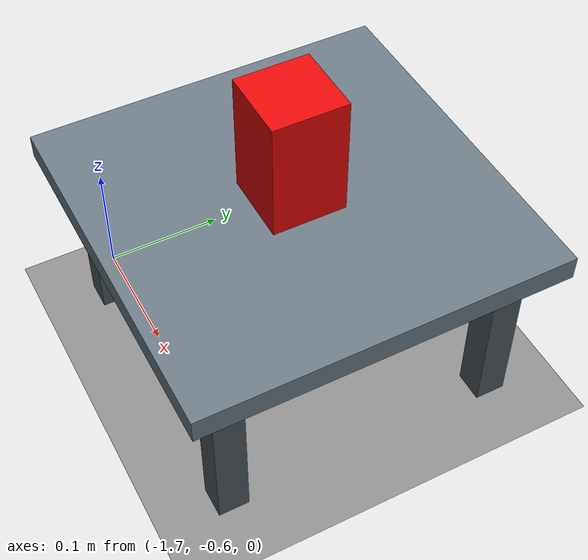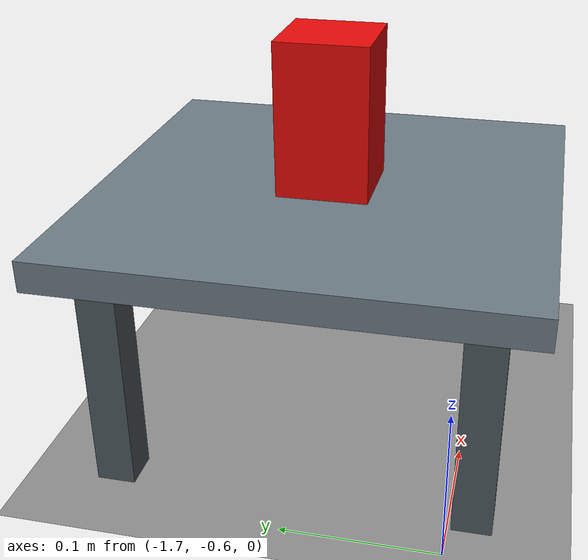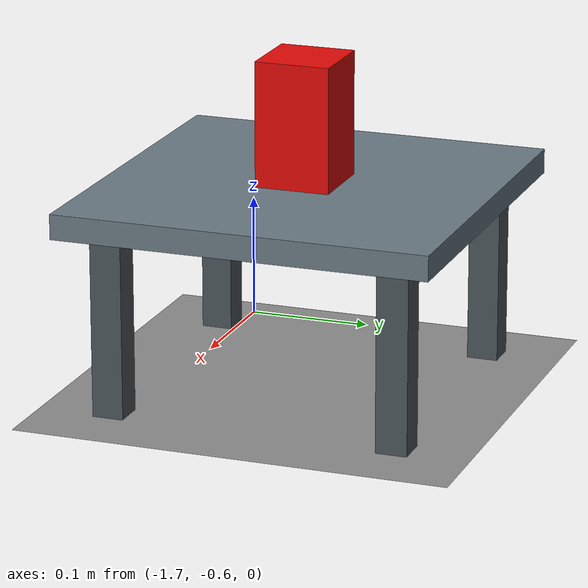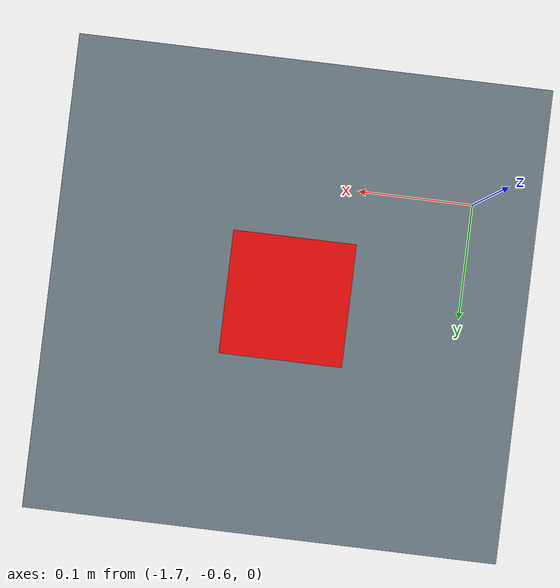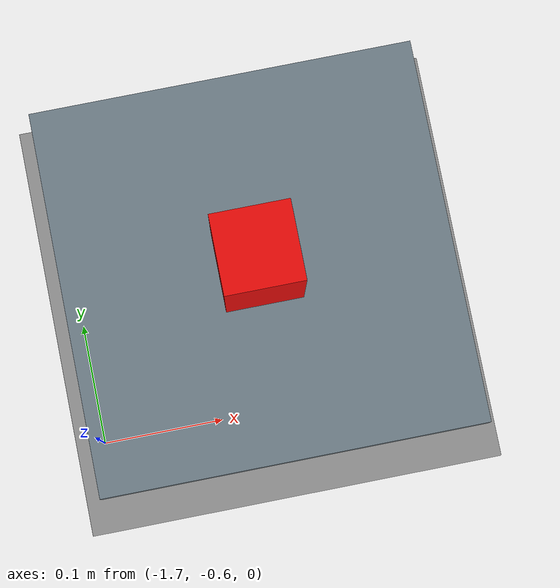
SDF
<?xml version="1.0"?>
<sdf version="1.6">
  <world name="default">
    <light name="sun" type="directional">
      <cast_shadows>1</cast_shadows>
      <pose>0 0 10 0 0 0</pose>
      <diffuse>0.8 0.8 0.8 1</diffuse>
      <specular>0.1 0.1 0.1 1</specular>
      <attenuation>
        <range>1000</range>
        <constant>0.9</constant>
        <linear>0.01</linear>
        <quadratic>0.001</quadratic>
      </attenuation>
      <direction>-0.5 0.5 -1</direction>
    </light>

    <model name="ground_plane">
      <static>1</static>
      <link name="link">
        <collision name="collision">
          <geometry>
            <plane>
              <normal>0 0 1</normal>
              <size>100 100</size>
            </plane>
          </geometry>
          <surface>
            <friction>
              <ode>
                <mu>100</mu>
                <mu2>50</mu2>
              </ode>
            </friction>
          </surface>
        </collision>
        <visual name="visual">
          <cast_shadows>0</cast_shadows>
          <geometry>
            <plane>
              <normal>0 0 1</normal>
              <size>100 100</size>
            </plane>
          </geometry>
          <material>
            <ambient>0.55 0.55 0.55 1</ambient>
            <diffuse>0.55 0.55 0.55 1</diffuse>
          </material>
        </visual>
      </link>
    </model>

    <model name="grasp_support_table">
      <static>1</static>
      <pose>-1.55 -0.50 0 0 0 0</pose>
      <link name="top">
        <pose>0 0 0.157 0 0 0</pose>
        <collision name="collision">
          <geometry>
            <box>
              <size>0.30 0.30 0.02</size>
            </box>
          </geometry>
        </collision>
        <visual name="visual">
          <geometry>
            <box>
              <size>0.30 0.30 0.02</size>
            </box>
          </geometry>
          <material>
            <ambient>0.42 0.48 0.52 1</ambient>
            <diffuse>0.42 0.48 0.52 1</diffuse>
          </material>
        </visual>
      </link>
      <link name="leg_front_left">
        <pose>0.115 0.115 0.0735 0 0 0</pose>
        <collision name="collision">
          <geometry>
            <box>
              <size>0.025 0.025 0.147</size>
            </box>
          </geometry>
        </collision>
        <visual name="visual">
          <geometry>
            <box>
              <size>0.025 0.025 0.147</size>
            </box>
          </geometry>
          <material>
            <ambient>0.30 0.34 0.36 1</ambient>
            <diffuse>0.30 0.34 0.36 1</diffuse>
          </material>
        </visual>
      </link>
      <link name="leg_front_right">
        <pose>0.115 -0.115 0.0735 0 0 0</pose>
        <collision name="collision">
          <geometry>
            <box>
              <size>0.025 0.025 0.147</size>
            </box>
          </geometry>
        </collision>
        <visual name="visual">
          <geometry>
            <box>
              <size>0.025 0.025 0.147</size>
            </box>
          </geometry>
          <material>
            <ambient>0.30 0.34 0.36 1</ambient>
            <diffuse>0.30 0.34 0.36 1</diffuse>
          </material>
        </visual>
      </link>
      <link name="leg_back_left">
        <pose>-0.115 0.115 0.0735 0 0 0</pose>
        <collision name="collision">
          <geometry>
            <box>
              <size>0.025 0.025 0.147</size>
            </box>
          </geometry>
        </collision>
        <visual name="visual">
          <geometry>
            <box>
              <size>0.025 0.025 0.147</size>
            </box>
          </geometry>
          <material>
            <ambient>0.30 0.34 0.36 1</ambient>
            <diffuse>0.30 0.34 0.36 1</diffuse>
          </material>
        </visual>
      </link>
      <link name="leg_back_right">
        <pose>-0.115 -0.115 0.0735 0 0 0</pose>
        <collision name="collision">
          <geometry>
            <box>
              <size>0.025 0.025 0.147</size>
            </box>
          </geometry>
        </collision>
        <visual name="visual">
          <geometry>
            <box>
              <size>0.025 0.025 0.147</size>
            </box>
          </geometry>
          <material>
            <ambient>0.30 0.34 0.36 1</ambient>
            <diffuse>0.30 0.34 0.36 1</diffuse>
          </material>
        </visual>
      </link>
    </model>

    <model name="grasp_test_cube">
      <static>0</static>
      <pose>-1.55 -0.50 0.217 0 0 0</pose>
      <link name="link">
        <gravity>false</gravity>
        <inertial>
          <mass>0.05</mass>
          <inertia>
            <ixx>0.000054</ixx>
            <iyy>0.000054</iyy>
            <izz>0.000030</izz>
            <ixy>0</ixy>
            <ixz>0</ixz>
            <iyz>0</iyz>
          </inertia>
        </inertial>
        <collision name="collision">
          <geometry>
            <box>
              <size>0.06 0.06 0.10</size>
            </box>
          </geometry>
          <surface>
            <friction>
              <ode>
                <mu>25.0</mu>
                <mu2>25.0</mu2>
                <slip1>0.0</slip1>
                <slip2>0.0</slip2>
              </ode>
              <torsional>
                <coefficient>1.0</coefficient>
                <use_patch_radius>true</use_patch_radius>
                <patch_radius>0.02</patch_radius>
                <surface_radius>0.03</surface_radius>
              </torsional>
            </friction>
            <contact>
              <ode>
                <kp>1000000</kp>
                <kd>10</kd>
                <max_vel>0.01</max_vel>
                <min_depth>0.001</min_depth>
              </ode>
            </contact>
          </surface>
        </collision>
        <visual name="visual">
          <geometry>
            <box>
              <size>0.06 0.06 0.10</size>
            </box>
          </geometry>
          <material>
            <ambient>0.9 0.04 0.03 1</ambient>
            <diffuse>0.9 0.04 0.03 1</diffuse>
          </material>
        </visual>
      </link>
    </model>

    <gravity>0 0 -9.8</gravity>
    <magnetic_field>6e-06 2.3e-05 -4.2e-05</magnetic_field>
    <atmosphere type="adiabatic"/>
    <physics name="default_physics" default="0" type="ode">
      <max_step_size>0.001</max_step_size>
      <real_time_factor>1</real_time_factor>
      <real_time_update_rate>1000</real_time_update_rate>
    </physics>
    <plugin
      filename="ignition-gazebo-physics-system"
      name="gz::sim::systems::Physics">
    </plugin>
    <plugin
      filename="ignition-gazebo-user-commands-system"
      name="gz::sim::systems::UserCommands">
    </plugin>
    <plugin
      filename="ignition-gazebo-scene-broadcaster-system"
      name="gz::sim::systems::SceneBroadcaster">
    </plugin>
    <plugin
      filename="ignition-gazebo-sensors-system"
      name="gz::sim::systems::Sensors">
      <render_engine>ogre2</render_engine>
    </plugin>
    <plugin
      filename="ignition-gazebo-imu-system"
      name="gz::sim::systems::Imu">
    </plugin>
    <scene>
      <ambient>0.4 0.4 0.4 1</ambient>
      <background>0.7 0.7 0.7 1</background>
      <shadows>false</shadows>
    </scene>
  </world>
</sdf>
